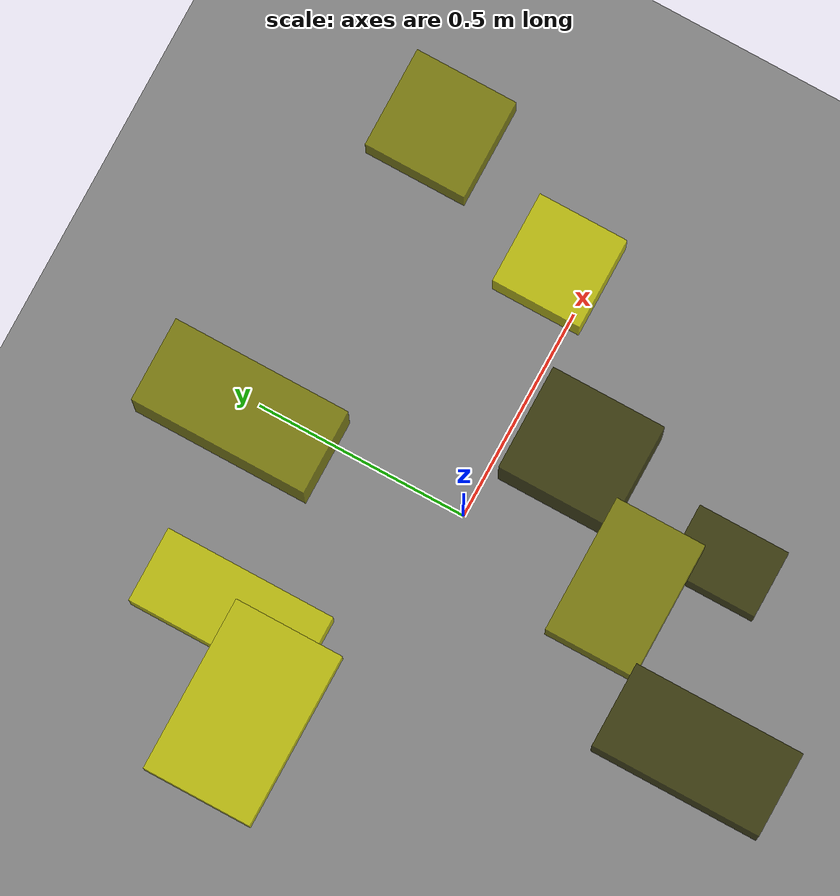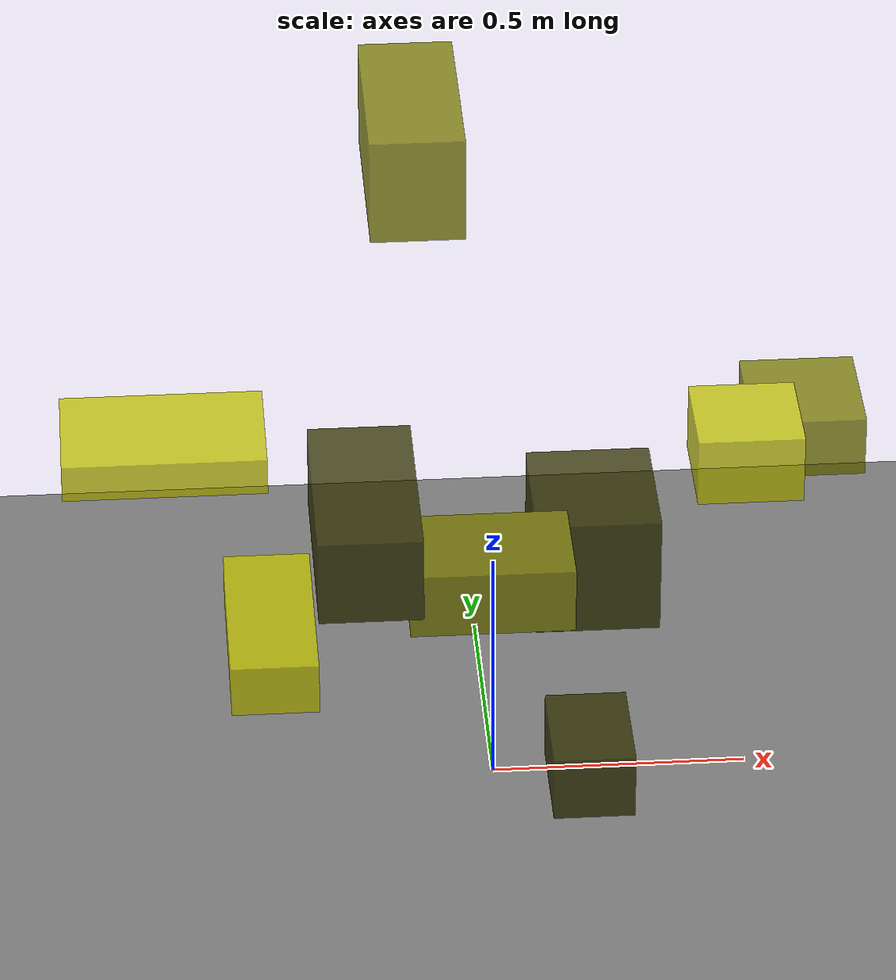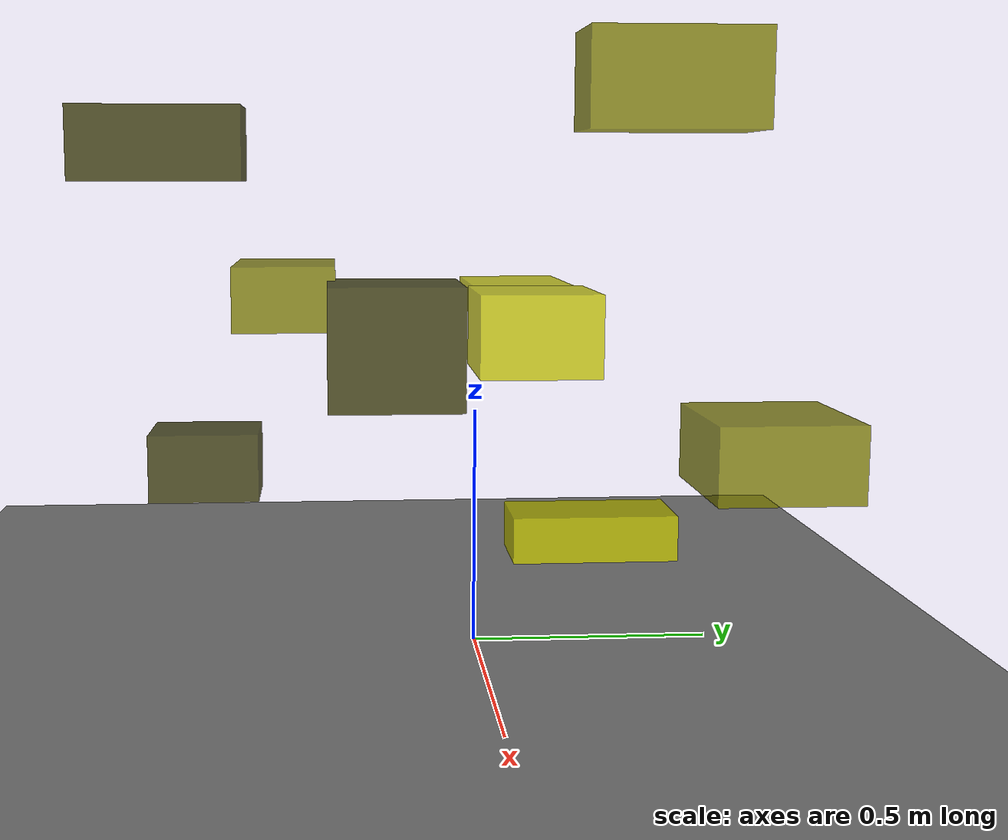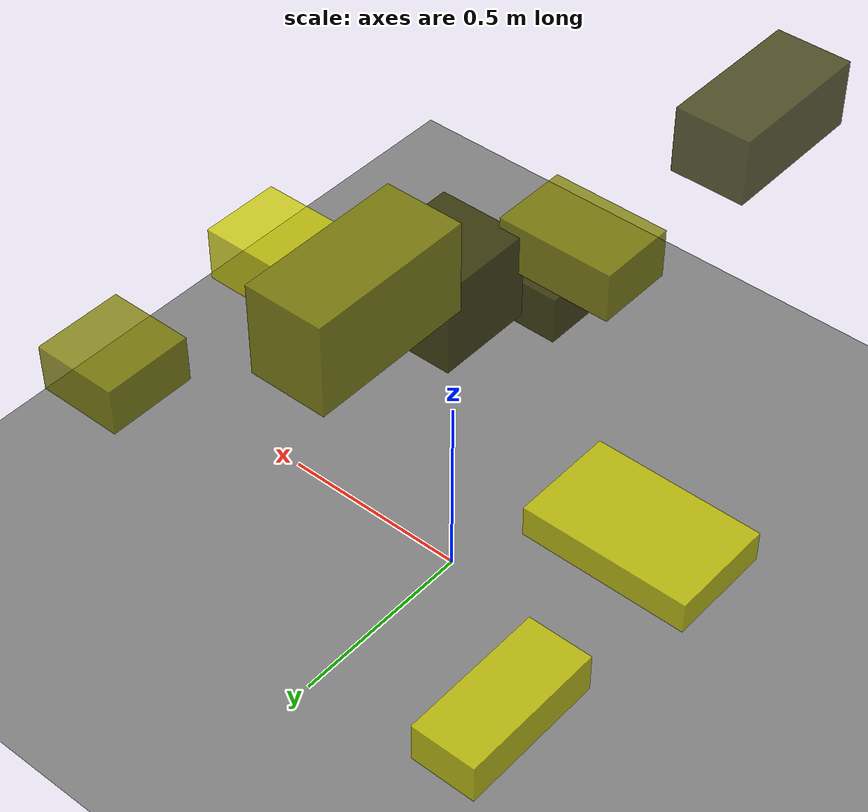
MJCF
<?xml version="1.0"?>
<mujoco model="obstacle_scene">
  <compiler angle="radian" coordinate="local"/>
  <option timestep="0.001" gravity="0 0 -9.81"/>

  <asset>
    <material name="obstacle_mat" rgba="0.8 0.8 0.0 0.8"/>
    <material name="ground_mat" rgba="0.5 0.5 0.5 1"/>
  </asset>

  <worldbody>
    <!-- Ground plane -->
    <geom name="ground" type="plane" size="3 3 0.1" material="ground_mat"/>

    <!-- Obstacles -->
    <body name="obstacle_0" pos="0.174647 -0.179114 0.663546">
      <geom name="obs_0" type="box" size="0.117700 0.130118 0.118744" rgba="0.2 0.2 0.0 0.8"/>
    </body>
    <body name="obstacle_1" pos="0.649079 0.408936 0.540819">
      <geom name="obs_1" type="box" size="0.113804 0.117559 0.063282" rgba="0.5 0.5 0.0 0.8"/>
    </body>
    <body name="obstacle_2" pos="-0.632662 0.172566 0.685576">
      <geom name="obs_2" type="box" size="0.198298 0.124469 0.037990" rgba="0.8 0.8 0.0 0.8"/>
    </body>
    <body name="obstacle_3" pos="-0.284926 -0.684487 1.061832">
      <geom name="obs_3" type="box" size="0.093551 0.189338 0.082880" rgba="0.2 0.2 0.0 0.8"/>
    </body>
    <body name="obstacle_4" pos="-0.038863 -0.395842 0.744281">
      <geom name="obs_4" type="box" size="0.153733 0.102785 0.065407" rgba="0.5 0.5 0.0 0.8"/>
    </body>
    <body name="obstacle_5" pos="0.491459 0.043840 0.723377">
      <geom name="obs_5" type="box" size="0.102388 0.101809 0.069879" rgba="0.8 0.8 0.0 0.8"/>
    </body>
    <body name="obstacle_6" pos="0.139307 -0.549289 0.428228">
      <geom name="obs_6" type="box" size="0.076054 0.105485 0.065614" rgba="0.2 0.2 0.0 0.8"/>
    </body>
    <body name="obstacle_7" pos="-0.129410 0.436825 1.195136">
      <geom name="obs_7" type="box" size="0.092013 0.194754 0.108433" rgba="0.5 0.5 0.0 0.8"/>
    </body>
    <body name="obstacle_8" pos="-0.425226 0.333351 0.118131">
      <geom name="obs_8" type="box" size="0.087803 0.200282 0.055484" rgba="0.8 0.8 0.0 0.8"/>
    </body>
  </worldbody>
</mujoco>
